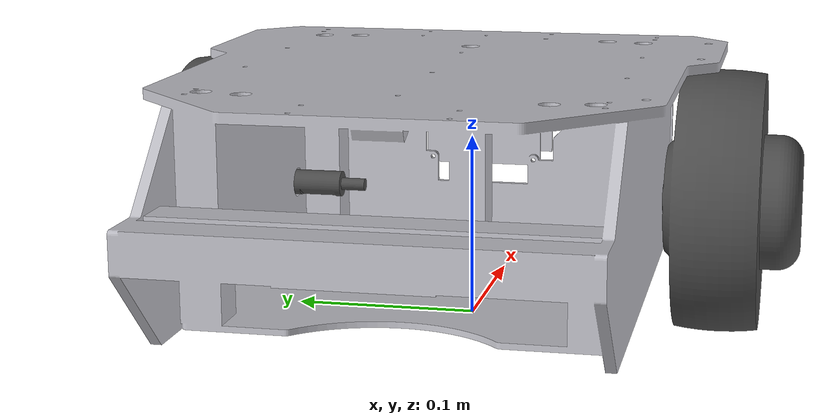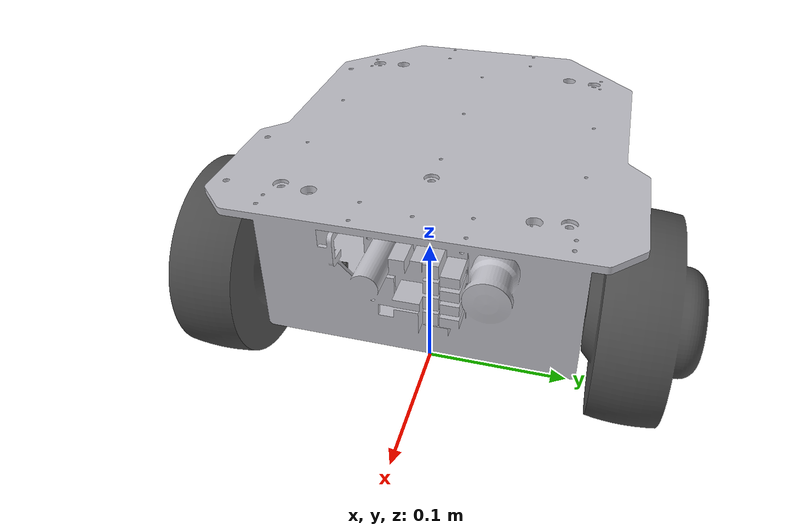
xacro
<?xml version="1.0"?>
<robot name="mega3" xmlns:xacro="http://www.ros.org/wiki/xacro">

  <xacro:include filename="$(find megarover_description)/urdf/materials.xacro" />
  <xacro:include filename="$(find megarover_description)/urdf/mega3_base_model.gazebo" />
  <!-- OPTION: LRF TG30 -->
  <!-- OPTION: bumper sensor -->

  <link name="base_footprint" />

  <joint name="base_joint" type="fixed">
    <parent link="base_footprint" />
    <child link="base_link" />
    <origin xyz="-0.1 0 0" rpy="0 0 -1.5708" />
  </joint>

  <link name="base_link">
    <inertial>
      <origin xyz="-0.0001512201285105937 -3.420007213019073e-05 0.08388833658828038" rpy="0 0 0" />
      <mass value="11.744482" />
      <inertia ixx="0.091465" iyy="0.06435" izz="0.1253"
        ixy="0.001018" iyz="-0.002369"
        ixz="0.000233" />
    </inertial>
    <visual>
      <origin xyz="0 0 0" rpy="0 0 0" />
      <geometry>
        <mesh filename="package://megarover_description/meshes/mega3/base_link.stl" scale="0.001 0.001 0.001" />
      </geometry>
      <material name="silver" />
    </visual>
    <collision>
      <origin xyz="0 0 0" rpy="0 0 0" />
      <geometry>
        <mesh filename="package://megarover_description/meshes/mega3/base_link.stl" scale="0.001 0.001 0.001" />
      </geometry>
    </collision>
  </link>

  <joint name="left_wheel_joint" type="continuous">
    <origin xyz="-0.136 0.1 0.07" rpy="0 -1.5708 0" />
    <parent link="base_link" />
    <child link="left_wheel_1" />
    <axis xyz="0.0 0.0 1.0" />
  </joint>

  <link name="left_wheel_1">
    <inertial>
      <origin xyz="0.0 0.0 0.00213" rpy="0 1.5708 0" />
      <mass value="1.239934" />
      <inertia ixx="0.002474" iyy="0.00174" izz="0.00174"
        ixy="0.000" iyz="0.000"
        ixz="-0.000" />
    </inertial>
    <visual>
      <origin xyz="-0.07 -0.1 -0.136" rpy="0 1.5708 0" />
      <geometry>
        <mesh filename="package://megarover_description/meshes/mega3/left_wheel_1.stl" scale="0.001 0.001 0.001" />
      </geometry>
      <material name="dark_grey" />
    </visual>
    <collision>
      <origin xyz="-0.07 -0.1 -0.136" rpy="0 1.5708 0" />
      <geometry>
        <mesh filename="package://megarover_description/meshes/mega3/left_wheel_1.stl" scale="0.001 0.001 0.001" />
      </geometry>
    </collision>
  </link>

  <joint name="right_wheel_joint" type="continuous">
    <origin xyz="0.136 0.1 0.07" rpy="0 -1.5708 0" />
    <parent link="base_link" />
    <child link="right_wheel_1" />
    <axis xyz="0.0 0.0 1.0" />
  </joint>

  <link name="right_wheel_1">
    <inertial>
      <origin xyz="0 0 -0.00213" rpy="0 1.5708 0" />
      <mass value="1.239934" />
      <inertia ixx="0.002474" iyy="0.00174" izz="0.00174"
        ixy="-0.000" iyz="-0.000"
        ixz="-0.000" />
    </inertial>
    <visual>
      <origin xyz="-0.07 -0.1 0.136" rpy="0 1.5708 0" />
      <geometry>
        <mesh filename="package://megarover_description/meshes/mega3/right_wheel_1.stl" scale="0.001 0.001 0.001" />
      </geometry>
      <material name="dark_grey" />
    </visual>
    <collision>
      <origin xyz="-0.07 -0.1 0.136" rpy="0 1.5708 0" />
      <geometry>
        <mesh filename="package://megarover_description/meshes/mega3/right_wheel_1.stl" scale="0.001 0.001 0.001" />
      </geometry>
    </collision>
  </link>

</robot>

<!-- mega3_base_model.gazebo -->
<robot name="mega3" xmlns:xacro="http://www.ros.org/wiki/xacro">

  <xacro:property name="body_color" value="Gazebo/Silver" />
  <xacro:property name="wheel_color" value="Gazebo/DarkGrey" />

  <gazebo reference="base_link">
    <material>${body_color}</material>
    <mu1>0.1</mu1>
    <mu2>0.1</mu2>
    <kp>1e6</kp>
    <kd>100.0</kd>
    <minDepth>0.001</minDepth>
    <maxVel>1.0</maxVel>
  </gazebo>

  <gazebo reference="right_wheel_1">
    <mu1>1.0</mu1>
    <mu2>1.0</mu2>
    <fdir1>1 0 0</fdir1>
    <kp>1e6</kp>
    <kd>10.0</kd>
    <minDepth>0.0001</minDepth>
    <maxVel>0.1</maxVel>
    <material>${wheel_color}</material>
  </gazebo>

  <gazebo reference="left_wheel_1">
    <mu1>1.0</mu1>
    <mu2>1.0</mu2>
    <fdir1>1 0 0</fdir1>
    <kp>1e6</kp>
    <kd>10.0</kd>
    <minDepth>0.0001</minDepth>
    <maxVel>0.1</maxVel>
    <material>${wheel_color}</material>
  </gazebo>

  <!-- diff drive plugin -->
  <gazebo>
    <plugin name="megarover3_controller" filename="libgazebo_ros_diff_drive.so">
      <commandTopic>cmd_vel</commandTopic>
      <odometryTopic>odom</odometryTopic>
      <odometryFrame>odom</odometryFrame>
      <odometrySource>world</odometrySource>
      <publishOdomTF>true</publishOdomTF>
      <robotBaseFrame>base_footprint</robotBaseFrame>
      <publishWheelTF>false</publishWheelTF>
      <publishTf>true</publishTf>
      <publishWheelJointState>true</publishWheelJointState>
      <legacyMode>false</legacyMode>
      <updateRate>30</updateRate>
      <leftJoint>left_wheel_joint</leftJoint>
      <rightJoint>right_wheel_joint</rightJoint>
      <wheelSeparation>0.272</wheelSeparation>
      <wheelDiameter>0.140</wheelDiameter>
      <wheelAcceleration>1.0</wheelAcceleration>
      <wheelTorque>30</wheelTorque>
      <rosDebugLevel>na</rosDebugLevel>
    </plugin>
  </gazebo>

</robot>
